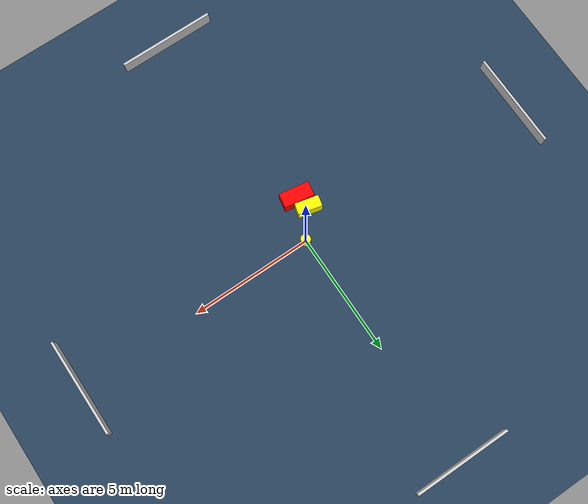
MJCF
<?xml version="1.0" ?>
<mujoco model="generated_environment">
  <option timestep="0.01" integrator="RK4" cone="elliptic"/>
  <default>
    <geom density="1"/>
  </default>
  <asset>
    <texture builtin="gradient" height="3072" name="skybox" rgb1="0.3 0.5 0.7" rgb2="0 0 0" type="skybox" width="512"/>
    <texture builtin="checker" height="300" name="groundplane" rgb1="0.2 0.3 0.4" rgb2="0.1 0.2 0.3" type="2d" width="300"/>
    <material name="groundplane" reflectance="0.2" texrepeat="5 5" texture="groundplane"/>
  </asset>
  <worldbody>
    <light dir="0 0 -1" directional="true" pos="0 0 1.5"/>
    <geom condim="3" friction="0.5 0.005 0.001" material="groundplane" name="floor" pos="0 0 0" size="0 0 0.05" type="plane"/>
    <body name="walls">
      <geom name="wall_1" condim="4" pos="-10.0 0.0 0.3" rgba="0.800000011920929 0.800000011920929 0.800000011920929 1.0" size="0.05 2.0 0.3" type="box"/>
      <geom name="wall_2" condim="4" pos="10.0 0.0 0.3" rgba="0.800000011920929 0.800000011920929 0.800000011920929 1.0" size="0.05 2.0 0.3" type="box"/>
      <geom name="wall_3" condim="4" pos="0.0 -10.0 0.3" rgba="0.800000011920929 0.800000011920929 0.800000011920929 1.0" size="2.0 0.05 0.3" type="box"/>
      <geom name="wall_4" condim="4" pos="0.0 10.0 0.3" rgba="0.800000011920929 0.800000011920929 0.800000011920929 1.0" size="2.0 0.05 0.3" type="box"/>
    </body>
    <body name="robot">
      <joint name="joint_x" type="slide" pos="0 0 0" axis="1 0 0"/>
      <joint name="joint_y" type="slide" pos="0 0 0" axis="0 1 0"/>
      <geom name="robot" type="cylinder" pos="0.0 0.0 0.2" size="0.2 0.2 0.0" mass="5.0" friction="1.0 0.005 0.0001" condim="4" rgba="1.0 1.0 0.0 1.0"/>
    </body>
    <body name="obstacle_1_movable">
      <geom name="obstacle_1_movable" condim="4" pos="-0.8222491819868647 -1.0257188879966392 0.3" euler="0 0 76.73584784247393" friction="0.0 0.005 0.001" rgba="1.0 1.0 0.0 1.0" size="0.22965482441477428 0.49333502421877024 0.3" type="box" mass="0.1"/>
      <joint type="free"/>
    </body>
    <body name="obstacle_2_static">
      <geom name="obstacle_2_static" condim="4" pos="-0.6776569499291172 -1.6203320150224405 0.3" euler="0 0 350.51661747385185" friction="0.0 0.005 0.001" rgba="1.0 0.0 0.0 1.0" size="0.6237365965952538 0.2998935510747432 0.3" type="box"/>
    </body>
  </worldbody>
  <actuator>
    <motor name="actuator_x" joint="joint_x" gear="1" ctrlrange="-1 1"/>
    <motor name="actuator_y" joint="joint_y" gear="1" ctrlrange="-1 1"/>
  </actuator>
</mujoco>
